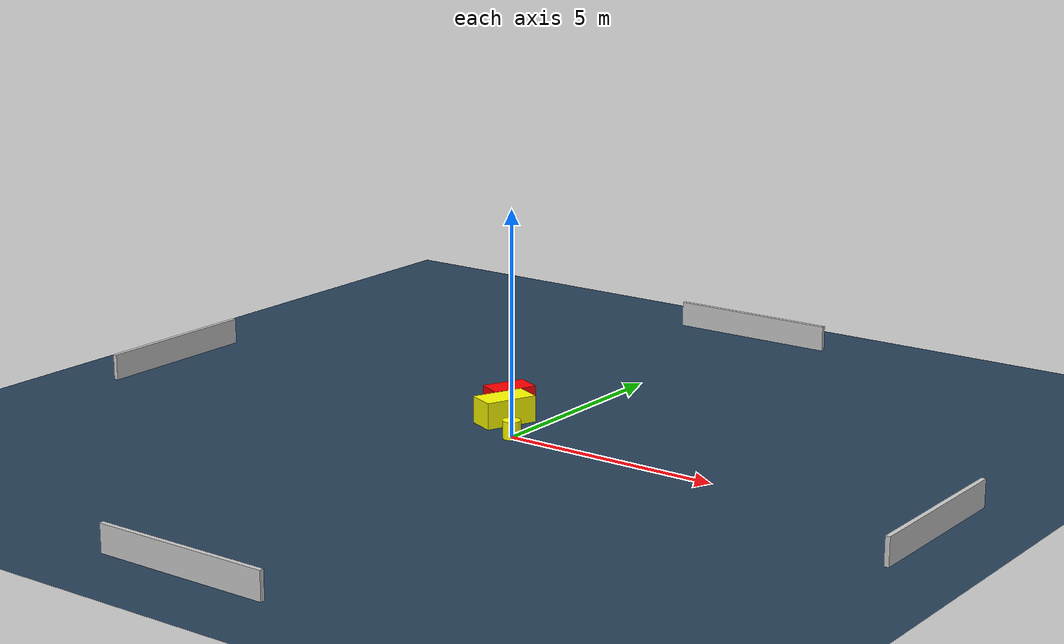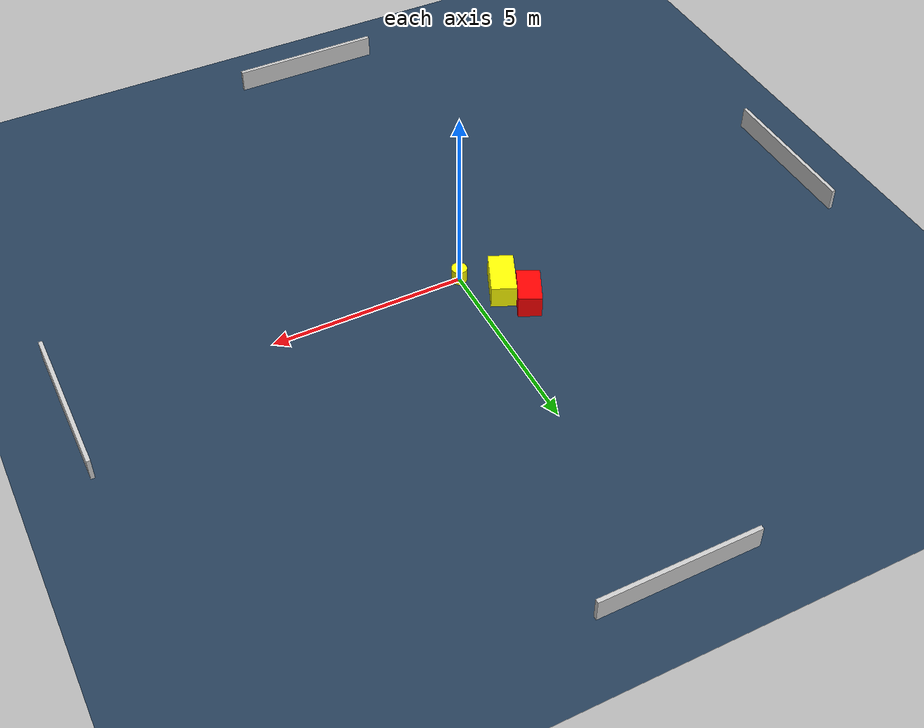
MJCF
<?xml version="1.0" ?>
<mujoco model="generated_environment">
  <option timestep="0.01" integrator="RK4" cone="elliptic"/>
  <default>
    <geom density="1"/>
  </default>
  <asset>
    <texture builtin="gradient" height="3072" name="skybox" rgb1="0.3 0.5 0.7" rgb2="0 0 0" type="skybox" width="512"/>
    <texture builtin="checker" height="300" name="groundplane" rgb1="0.2 0.3 0.4" rgb2="0.1 0.2 0.3" type="2d" width="300"/>
    <material name="groundplane" reflectance="0.2" texrepeat="5 5" texture="groundplane"/>
  </asset>
  <worldbody>
    <light dir="0 0 -1" directional="true" pos="0 0 1.5"/>
    <geom condim="3" friction="0.5 0.005 0.001" material="groundplane" name="floor" pos="0 0 0" size="0 0 0.05" type="plane"/>
    <body name="walls">
      <geom name="wall_1" condim="4" pos="-10.0 0.0 0.3" rgba="0.800000011920929 0.800000011920929 0.800000011920929 1.0" size="0.05 2.0 0.3" type="box"/>
      <geom name="wall_2" condim="4" pos="10.0 0.0 0.3" rgba="0.800000011920929 0.800000011920929 0.800000011920929 1.0" size="0.05 2.0 0.3" type="box"/>
      <geom name="wall_3" condim="4" pos="0.0 -10.0 0.3" rgba="0.800000011920929 0.800000011920929 0.800000011920929 1.0" size="2.0 0.05 0.3" type="box"/>
      <geom name="wall_4" condim="4" pos="0.0 10.0 0.3" rgba="0.800000011920929 0.800000011920929 0.800000011920929 1.0" size="2.0 0.05 0.3" type="box"/>
    </body>
    <body name="robot">
      <joint name="joint_x" type="slide" pos="0 0 0" axis="1 0 0"/>
      <joint name="joint_y" type="slide" pos="0 0 0" axis="0 1 0"/>
      <geom name="robot" type="cylinder" pos="0.0 0.0 0.2" size="0.2 0.2 0.0" mass="5.0" friction="1.0 0.005 0.0001" condim="4" rgba="1.0 1.0 0.0 1.0"/>
    </body>
    <body name="obstacle_1_movable">
      <geom name="obstacle_1_movable" condim="4" pos="-0.7868395728025872 0.7952155957514604 0.3" euler="0 0 336.56991623576664" friction="0.0 0.005 0.001" rgba="1.0 1.0 0.0 1.0" size="0.31920645635551875 0.597645338115139 0.3" type="box" mass="0.1"/>
      <joint type="free"/>
    </body>
    <body name="obstacle_2_static">
      <geom name="obstacle_2_static" condim="4" pos="-1.1666724901985637 1.4817977166101695 0.3" euler="0 0 334.7768771102059" friction="0.0 0.005 0.001" rgba="1.0 0.0 0.0 1.0" size="0.2960209085811042 0.5052564603759783 0.3" type="box"/>
    </body>
  </worldbody>
  <actuator>
    <motor name="actuator_x" joint="joint_x" gear="1" ctrlrange="-1 1"/>
    <motor name="actuator_y" joint="joint_y" gear="1" ctrlrange="-1 1"/>
  </actuator>
</mujoco>
